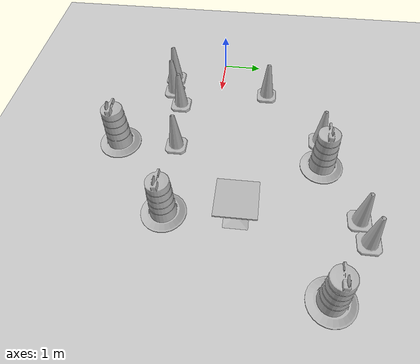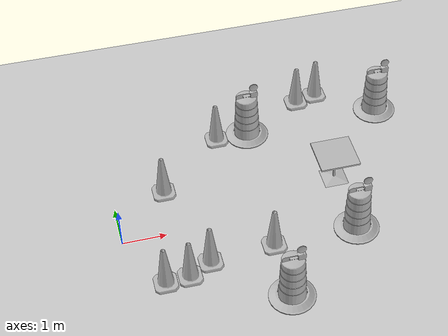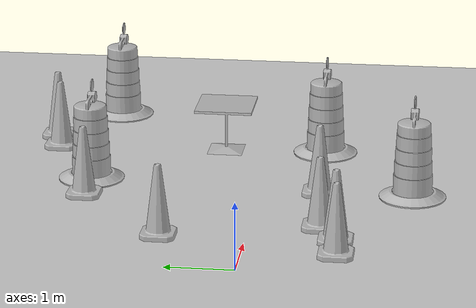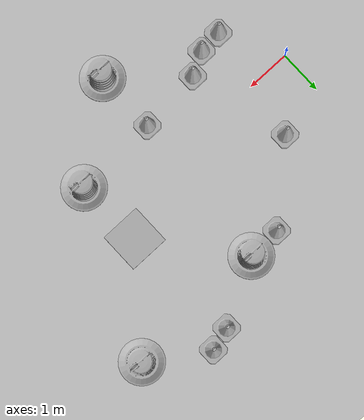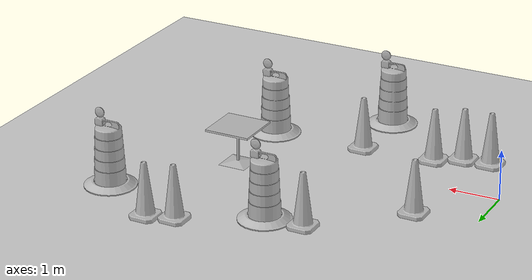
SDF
<sdf version="1.7">
 <world name="default">
  <light name="sun" type="directional">
   <pose>0 0 10 0 -0 0</pose>
   <diffuse>0.8 0.8 0.8 1</diffuse>
   <specular>0.2 0.2 0.2 1</specular>
   <attenuation>
    <range>1000</range>
    <constant>0.9</constant>
    <linear>0.01</linear>
    <quadratic>0.001</quadratic>
   </attenuation>
   <direction>-0.5 0.1 -0.9</direction>
   <spot><inner_angle>0</inner_angle><outer_angle>0</outer_angle><falloff>0</falloff></spot>
  </light>
  <model name="ground_plane">
   <static>1</static>
   <link name="link">
    <collision name="collision">
     <geometry><plane><normal>0 0 1</normal><size>100 100</size></plane></geometry>
     <surface><friction><ode><mu>100</mu><mu2>50</mu2></ode></friction></surface>
    </collision>
    <visual name="visual">
     <cast_shadows>0</cast_shadows>
     <geometry><plane><normal>0 0 1</normal><size>100 100</size></plane></geometry>
     <material>
      <script><uri>file://media/materials/scripts/gazebo.material</uri><name>Gazebo/Grey</name></script>
     </material>
    </visual>
   </link>
  </model>
  <gravity>0 0 -9.8</gravity>
  <magnetic_field>6e-06 2.3e-05 -4.2e-05</magnetic_field>
  <atmosphere type="adiabatic"/>
  <physics type="ode">
   <max_step_size>0.001</max_step_size>
   <real_time_factor>1</real_time_factor>
   <real_time_update_rate>1000</real_time_update_rate>
  </physics>
  <scene><ambient>0.4 0.4 0.4 1</ambient><background>0.7 0.7 0.7 1</background><shadows>1</shadows></scene>
  <audio><device>default</device></audio>
  <spherical_coordinates>
   <surface_model>EARTH_WGS84</surface_model>
   <latitude_deg>0</latitude_deg>
   <longitude_deg>0</longitude_deg>
   <elevation>0</elevation>
   <heading_deg>0</heading_deg>
  </spherical_coordinates>
  <model name="Construction Barrel">
   <link name="link">
    <inertial>
     <pose>0 0 0.4 0 -0 0</pose>
     <mass>500</mass>
     <inertia><ixx>51.2096</ixx><iyy>51.2096</iyy><izz>25</izz><ixy>0</ixy><ixz>0</ixz><iyz>0</iyz></inertia>
    </inertial>
    <collision name="collision">
     <geometry><mesh><uri>model://construction_barrel/meshes/construction_barrel.dae</uri></mesh></geometry>
    </collision>
    <visual name="visual">
     <geometry><mesh><uri>model://construction_barrel/meshes/construction_barrel.dae</uri></mesh></geometry>
    </visual>
   </link>
   <pose>3.21842 -2.30845 -0 0 -0 -2.2e-05</pose>
  </model>
  <model name="Construction Cone">
   <link name="link">
    <collision name="collision">
     <geometry>
      <mesh><scale>10 10 10</scale><uri>model://construction_cone/meshes/construction_cone.dae</uri></mesh>
     </geometry>
    </collision>
    <visual name="visual">
     <geometry>
      <mesh><scale>10 10 10</scale><uri>model://construction_cone/meshes/construction_cone.dae</uri></mesh>
     </geometry>
    </visual>
    <inertial>
     <inertia><ixx>1</ixx><ixy>0</ixy><ixz>0</ixz><iyy>1</iyy><iyz>0</iyz><izz>1</izz></inertia>
     <mass>1</mass>
    </inertial>
   </link>
   <pose>1.17181 1.25696 -0 0 -1e-06 0</pose>
  </model>
  <model name="Construction Cone_0">
   <link name="link">
    <collision name="collision">
     <geometry>
      <mesh><scale>10 10 10</scale><uri>model://construction_cone/meshes/construction_cone.dae</uri></mesh>
     </geometry>
    </collision>
    <visual name="visual">
     <geometry>
      <mesh><scale>10 10 10</scale><uri>model://construction_cone/meshes/construction_cone.dae</uri></mesh>
     </geometry>
    </visual>
    <inertial>
     <inertia><ixx>1</ixx><ixy>0</ixy><ixz>0</ixz><iyy>1</iyy><iyz>0</iyz><izz>1</izz></inertia>
     <mass>1</mass>
    </inertial>
   </link>
   <pose>3.20639 -0.895822 -4e-06 3e-06 -0 0</pose>
  </model>
  <model name="Construction Cone_1">
   <link name="link">
    <collision name="collision">
     <geometry>
      <mesh><scale>10 10 10</scale><uri>model://construction_cone/meshes/construction_cone.dae</uri></mesh>
     </geometry>
    </collision>
    <visual name="visual">
     <geometry>
      <mesh><scale>10 10 10</scale><uri>model://construction_cone/meshes/construction_cone.dae</uri></mesh>
     </geometry>
    </visual>
    <inertial>
     <inertia><ixx>1</ixx><ixy>0</ixy><ixz>0</ixz><iyy>1</iyy><iyz>0</iyz><izz>1</izz></inertia>
     <mass>1</mass>
    </inertial>
   </link>
   <pose>1.25513 -1.29372 -1e-05 -1e-06 0 0</pose>
  </model>
  <model name="Construction Cone_2">
   <link name="link">
    <collision name="collision">
     <geometry>
      <mesh><scale>10 10 10</scale><uri>model://construction_cone/meshes/construction_cone.dae</uri></mesh>
     </geometry>
    </collision>
    <visual name="visual">
     <geometry>
      <mesh><scale>10 10 10</scale><uri>model://construction_cone/meshes/construction_cone.dae</uri></mesh>
     </geometry>
    </visual>
    <inertial>
     <inertia><ixx>1</ixx><ixy>0</ixy><ixz>0</ixz><iyy>1</iyy><iyz>0</iyz><izz>1</izz></inertia>
     <mass>1</mass>
    </inertial>
   </link>
   <pose>2.71864 2.64492 -0 0 -0 0</pose>
  </model>
  <model name="Construction Barrel_0">
   <link name="link">
    <inertial>
     <pose>0 0 0.4 0 -0 0</pose>
     <mass>500</mass>
     <inertia><ixx>51.2096</ixx><iyy>51.2096</iyy><izz>25</izz><ixy>0</ixy><ixz>0</ixz><iyz>0</iyz></inertia>
    </inertial>
    <collision name="collision">
     <geometry><mesh><uri>model://construction_barrel/meshes/construction_barrel.dae</uri></mesh></geometry>
    </collision>
    <visual name="visual">
     <geometry><mesh><uri>model://construction_barrel/meshes/construction_barrel.dae</uri></mesh></geometry>
    </visual>
   </link>
   <pose>3.48125 2.67321 0 0 0 -1.5e-05</pose>
  </model>
  <model name="cafe_table">
   <static>1</static>
   <link name="link">
    <collision name="surface">
     <pose>0 0 0.755 0 -0 0</pose>
     <geometry><box><size>0.913 0.913 0.04</size></box></geometry>
    </collision>
    <collision name="column">
     <pose>0 0 0.37 0 -0 0</pose>
     <geometry><box><size>0.042 0.042 0.74</size></box></geometry>
    </collision>
    <collision name="base">
     <pose>0 0 0.02 0 -0 0</pose>
     <geometry><box><size>0.56 0.56 0.04</size></box></geometry>
    </collision>
    <visual name="visual">
     <geometry><mesh><uri>model://cafe_table/meshes/cafe_table.dae</uri></mesh></geometry>
    </visual>
   </link>
   <pose>5.0828 0.769532 0 0 -0 0</pose>
  </model>
  <model name="Construction Cone_3">
   <link name="link">
    <collision name="collision">
     <geometry>
      <mesh><scale>10 10 10</scale><uri>model://construction_cone/meshes/construction_cone.dae</uri></mesh>
     </geometry>
    </collision>
    <visual name="visual">
     <geometry>
      <mesh><scale>10 10 10</scale><uri>model://construction_cone/meshes/construction_cone.dae</uri></mesh>
     </geometry>
    </visual>
    <inertial>
     <inertia><ixx>1</ixx><ixy>0</ixy><ixz>0</ixz><iyy>1</iyy><iyz>0</iyz><izz>1</izz></inertia>
     <mass>1</mass>
    </inertial>
   </link>
   <pose>0.716618 -1.33953 0 -0 -0 -0</pose>
  </model>
  <model name="Construction Cone_4">
   <link name="link">
    <collision name="collision">
     <geometry>
      <mesh><scale>10 10 10</scale><uri>model://construction_cone/meshes/construction_cone.dae</uri></mesh>
     </geometry>
    </collision>
    <visual name="visual">
     <geometry>
      <mesh><scale>10 10 10</scale><uri>model://construction_cone/meshes/construction_cone.dae</uri></mesh>
     </geometry>
    </visual>
    <inertial>
     <inertia><ixx>1</ixx><ixy>0</ixy><ixz>0</ixz><iyy>1</iyy><iyz>0</iyz><izz>1</izz></inertia>
     <mass>1</mass>
    </inertial>
   </link>
   <pose>1.7607 -1.0212 -8e-06 1e-06 -0 0</pose>
  </model>
  <model name="Construction Cone_5">
   <link name="link">
    <collision name="collision">
     <geometry>
      <mesh><scale>10 10 10</scale><uri>model://construction_cone/meshes/construction_cone.dae</uri></mesh>
     </geometry>
    </collision>
    <visual name="visual">
     <geometry>
      <mesh><scale>10 10 10</scale><uri>model://construction_cone/meshes/construction_cone.dae</uri></mesh>
     </geometry>
    </visual>
    <inertial>
     <inertia><ixx>1</ixx><ixy>0</ixy><ixz>0</ixz><iyy>1</iyy><iyz>0</iyz><izz>1</izz></inertia>
     <mass>1</mass>
    </inertial>
   </link>
   <pose>4.91564 3.4415 -0 0 -1e-06 0</pose>
  </model>
  <model name="Construction Cone_6">
   <link name="link">
    <collision name="collision">
     <geometry>
      <mesh><scale>10 10 10</scale><uri>model://construction_cone/meshes/construction_cone.dae</uri></mesh>
     </geometry>
    </collision>
    <visual name="visual">
     <geometry>
      <mesh><scale>10 10 10</scale><uri>model://construction_cone/meshes/construction_cone.dae</uri></mesh>
     </geometry>
    </visual>
    <inertial>
     <inertia><ixx>1</ixx><ixy>0</ixy><ixz>0</ixz><iyy>1</iyy><iyz>0</iyz><izz>1</izz></inertia>
     <mass>1</mass>
    </inertial>
   </link>
   <pose>5.43896 3.58922 -0 0 -1e-06 0</pose>
  </model>
  <model name="Construction Barrel_1">
   <link name="link">
    <inertial>
     <pose>0 0 0.4 0 -0 0</pose>
     <mass>500</mass>
     <inertia><ixx>51.2096</ixx><iyy>51.2096</iyy><izz>25</izz><ixy>0</ixy><ixz>0</ixz><iyz>0</iyz></inertia>
    </inertial>
    <collision name="collision">
     <geometry><mesh><uri>model://construction_barrel/meshes/construction_barrel.dae</uri></mesh></geometry>
    </collision>
    <visual name="visual">
     <geometry><mesh><uri>model://construction_barrel/meshes/construction_barrel.dae</uri></mesh></geometry>
    </visual>
   </link>
   <pose>5.11376 -0.832367 -2e-06 0 7e-06 -7e-06</pose>
  </model>
  <model name="Construction Barrel_2">
   <link name="link">
    <inertial>
     <pose>0 0 0.4 0 -0 0</pose>
     <mass>500</mass>
     <inertia><ixx>51.2096</ixx><iyy>51.2096</iyy><izz>25</izz><ixy>0</ixy><ixz>0</ixz><iyz>0</iyz></inertia>
    </inertial>
    <collision name="collision">
     <geometry><mesh><uri>model://construction_barrel/meshes/construction_barrel.dae</uri></mesh></geometry>
    </collision>
    <visual name="visual">
     <geometry><mesh><uri>model://construction_barrel/meshes/construction_barrel.dae</uri></mesh></geometry>
    </visual>
   </link>
   <pose>6.72819 2.7474 -0 0 -0 -4e-06</pose>
  </model>
 </world>
</sdf>
